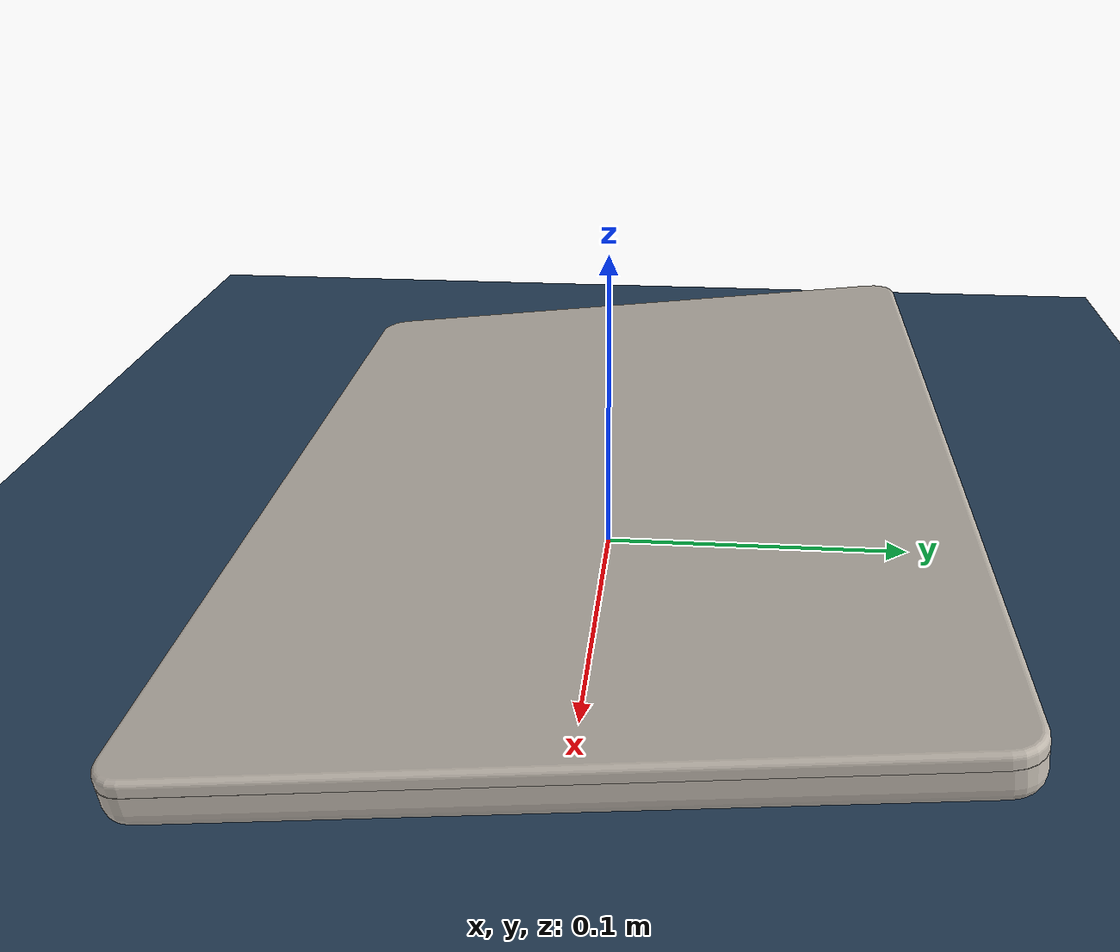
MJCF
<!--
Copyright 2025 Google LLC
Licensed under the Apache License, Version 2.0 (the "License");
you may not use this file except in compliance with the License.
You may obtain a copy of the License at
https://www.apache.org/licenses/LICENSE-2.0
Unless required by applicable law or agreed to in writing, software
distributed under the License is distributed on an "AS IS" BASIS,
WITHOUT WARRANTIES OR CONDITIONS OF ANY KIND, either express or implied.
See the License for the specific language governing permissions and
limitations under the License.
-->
<mujoco model="laptop_scene">
  <include file="model.xml"/>

  <option>
    <flag multiccd="enable"/>
  </option>

  <statistic center="0 0 0.1" extent="0.4" meansize="0.02"/>

  <visual>
    <headlight diffuse="0.6 0.6 0.6" ambient="0.3 0.3 0.3" specular="0 0 0"/>
    <rgba haze="0.15 0.25 0.35 1"/>
    <global azimuth="120" elevation="-10"/>
  </visual>

  <asset>
    <texture type="skybox" builtin="gradient" rgb1="0.3 0.5 0.7" rgb2="0 0 0" width="512" height="3072"/>
    <texture type="2d" name="groundplane" builtin="checker" mark="edge" rgb1="0.2 0.3 0.4" rgb2="0.1 0.2 0.3"
      markrgb="0.8 0.8 0.8" width="300" height="300"/>
    <material name="groundplane" texture="groundplane" texuniform="true" texrepeat="5 5" reflectance="0.2"/>
  </asset>

  <worldbody>
    <light pos="0 0 1.5" directional="true"/>
    <geom name="floor" size="0 0 0.05" type="plane" material="groundplane"/>
  </worldbody>
</mujoco>

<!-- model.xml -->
<mujoco model="laptop_final_hinge_origin_clarified_door_example">
    <compiler assetdir="meshes" texturedir="materials" angle="radian" inertiafromgeom="true" boundinertia="1e-06"/>
    <option noslip_iterations="2"/>
    <asset>
        <texture type="2d" name="laptop_texture" file="4k_textures/laptop_4k_BaseColor.png"/>
        <material name="laptop_material" texture="laptop_texture"/>
        <mesh file="laptop_body.obj" scale="1 1 1"/>
        <mesh file="laptop_body_collision.obj" scale="1 1 1"/>
        <mesh file="laptop_body_collision_001.obj" scale="1 1 1"/>
        <mesh file="laptop_body_collision_002.obj" scale="1 1 1"/>
        <mesh file="laptop_body_collision_003.obj" scale="1 1 1"/>
        <mesh file="laptop_body_collision_004.obj" scale="1 1 1"/>
        <mesh file="laptop_body_collision_005.obj" scale="1 1 1"/>
        <mesh file="laptop_body_collision_006.obj" scale="1 1 1"/>
        <mesh file="laptop_screen.obj" scale="1 1 1"/>
        <mesh file="laptop_screen_collision_007.obj" scale="1 1 1"/>
        <mesh file="laptop_screen_collision_008.obj" scale="1 1 1"/>
        <mesh file="laptop_screen_collision_009.obj" scale="1 1 1"/>
        <mesh file="laptop_screen_collision_010.obj" scale="1 1 1"/>
        <mesh file="laptop_screen_collision_011.obj" scale="1 1 1"/>
        <mesh file="laptop_screen_collision_012.obj" scale="1 1 1"/>
        <mesh file="laptop_screen_collision_013.obj" scale="1 1 1"/>
    </asset>
    <default>
        <default class="laptop_screen">
            <default class="visual_laptop_screen">
                <geom type="mesh" group="2" contype="0" conaffinity="0" material="laptop_material"/>
            </default>
            <default class="collision_laptop_screen">
                <geom type="mesh" group="3" mass="0.1" solref=".004 1" friction="5.0 0.05 0.05" condim="6" solimp="2 2 0.01"/>
            </default>
        </default>
    </default>
    <default>
        <default class="laptop_body">
            <default class="visual_laptop_body">
                <geom type="mesh" group="2" contype="0" conaffinity="0" material="laptop_material"/>
            </default>
            <default class="collision_laptop_body">
                <geom type="mesh" group="3" mass="1.3" solref=".004 1" friction="5.0 0.05 0.05" condim="6" solimp="5 2 0.01"/>
            </default>
        </default>
    </default>
    <worldbody>
        <body name="base_joint"> <freejoint/>
            <body name="laptop_body" pos="0 0 0.015" euler="-80 0 0">
                <geom class="visual_laptop_body" mesh="laptop_body" euler="0 0 0"/>
                <geom class="collision_laptop_body" mesh="laptop_body_collision" euler="0 0 0"/>
                <geom class="collision_laptop_body" mesh="laptop_body_collision_001" euler="0 0 0"/>
                <geom class="collision_laptop_body" mesh="laptop_body_collision_002" euler="0 0 0"/>
                <geom class="collision_laptop_body" mesh="laptop_body_collision_003" euler="0 0 0"/>
                <geom class="collision_laptop_body" mesh="laptop_body_collision_004" euler="0 0 0"/>
                <geom class="collision_laptop_body" mesh="laptop_body_collision_005" euler="0 0 0"/>
                <geom class="collision_laptop_body" mesh="laptop_body_collision_006" euler="0 0 0"/>
                <body name="laptop_screen" pos="0 0 0">
                    <joint name="screen_hinge" pos="0 0.006941 -0.107527" axis="1 0 0" range="-1.83469 0.00051239" frictionloss="1.5" solimplimit="1 2 0.01" solreflimit="0.0075 1" damping="0.2" armature="0.001"/>
                    <geom class="visual_laptop_screen" mesh="laptop_screen" euler="0 0 0"/>
                    <geom class="collision_laptop_screen" mesh="laptop_screen_collision_007" euler="0 0 0"/>
                    <geom class="collision_laptop_screen" mesh="laptop_screen_collision_008" euler="0 0 0"/>
                    <geom class="collision_laptop_screen" mesh="laptop_screen_collision_009" euler="0 0 0"/>
                    <geom class="collision_laptop_screen" mesh="laptop_screen_collision_010" euler="0 0 0"/>
                    <geom class="collision_laptop_screen" mesh="laptop_screen_collision_011" euler="0 0 0"/>
                    <geom class="collision_laptop_screen" mesh="laptop_screen_collision_012" euler="0 0 0"/>
                    <geom class="collision_laptop_screen" mesh="laptop_screen_collision_013" euler="0 0 0"/>
                </body>
            </body>
        </body>
    </worldbody>
    <contact>
        <exclude body1="laptop_body" body2="laptop_screen"/>
    </contact>
    <option timestep="0.002" gravity="0 0 -9.81"/>
</mujoco>
